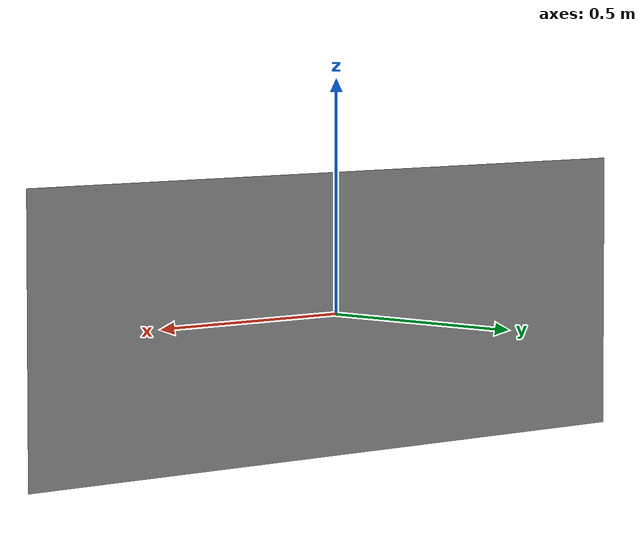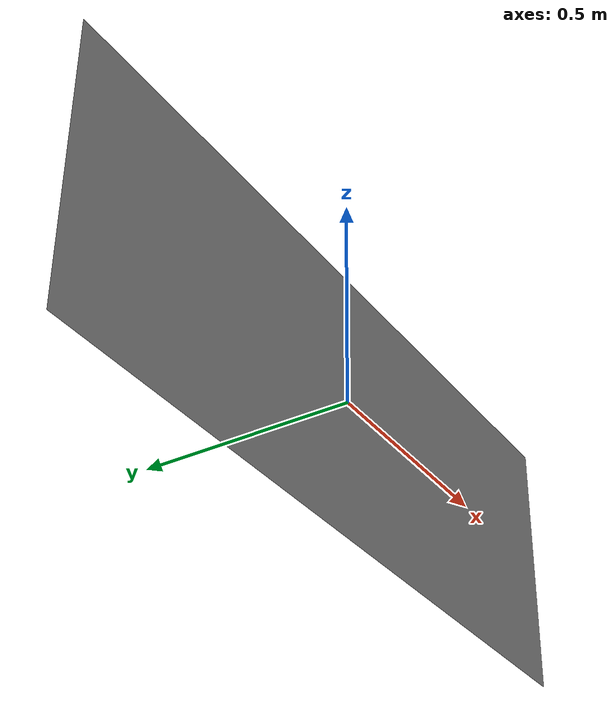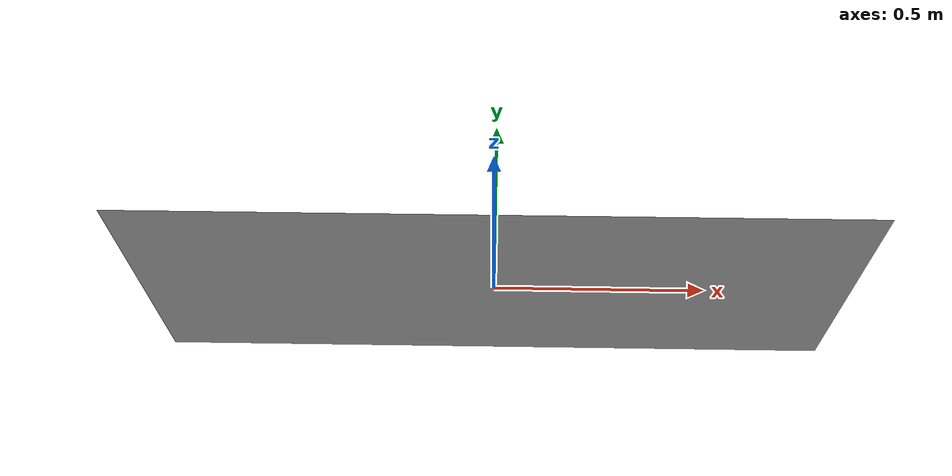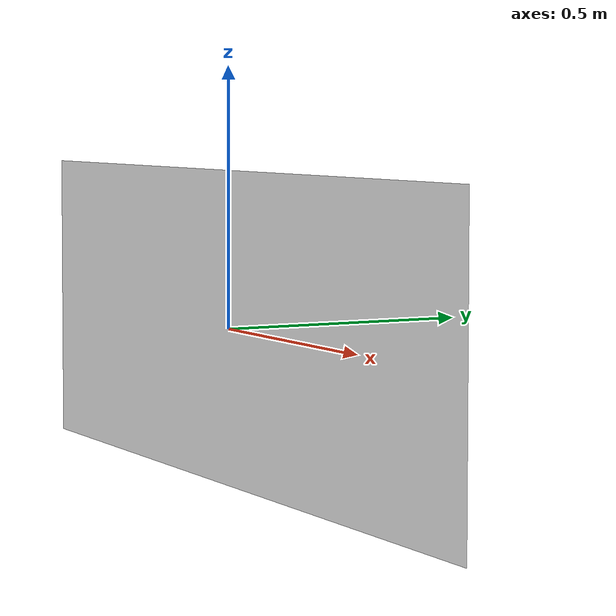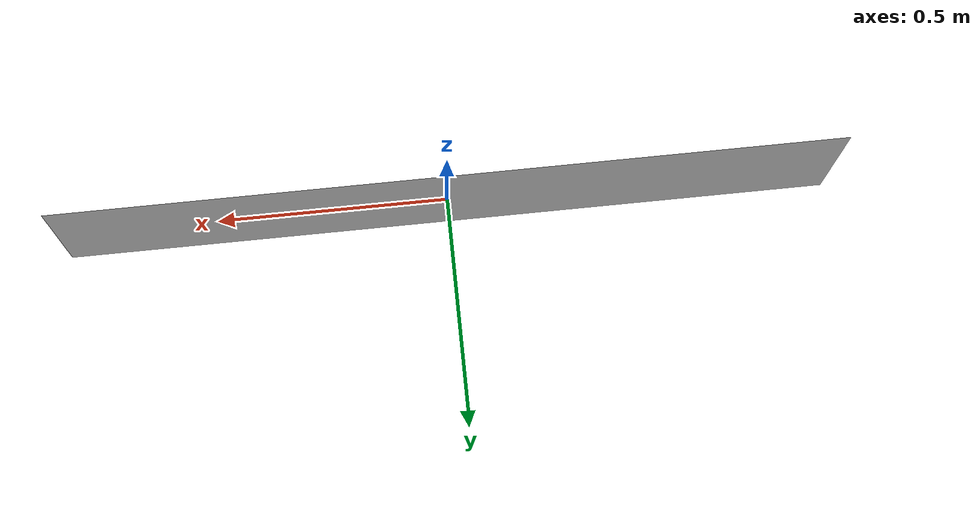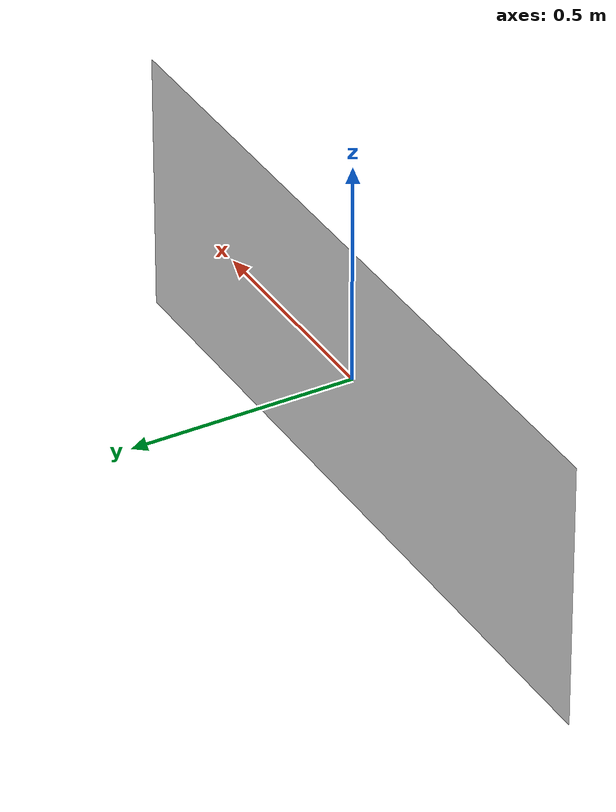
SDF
<?xml version="1.0" ?>
<sdf version="1.6">
  <model name="logotrc">
    <static>true</static>
    <link name="link">

      <visual name="cube_visual">
        <geometry>
          <box>
            <size>1.7021 0 0.60443</size>
          </box>
        </geometry>
        <material>
          <script>
            <uri>model://logotrc/materials/scripts/</uri>
            <uri>model://logotrc/materials/textures/</uri>
            <name>logotrc/FaceMaterial</name>
          </script>
        </material>
      </visual>

    </link>
  </model>
</sdf>
